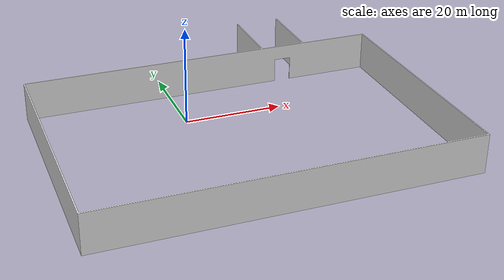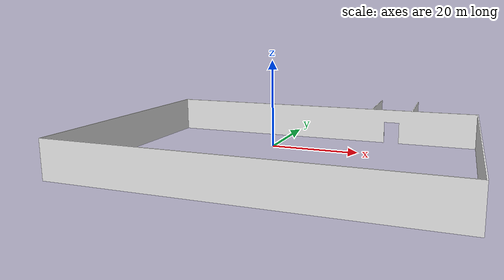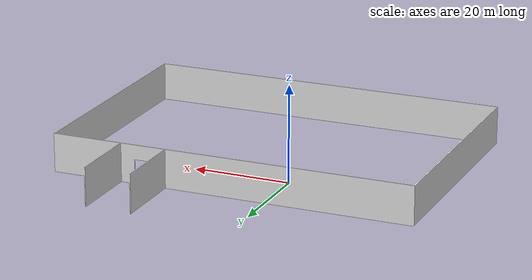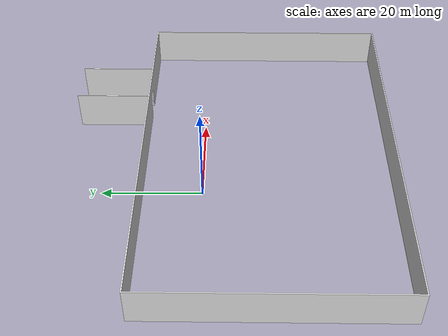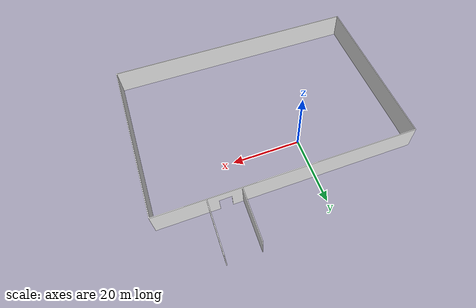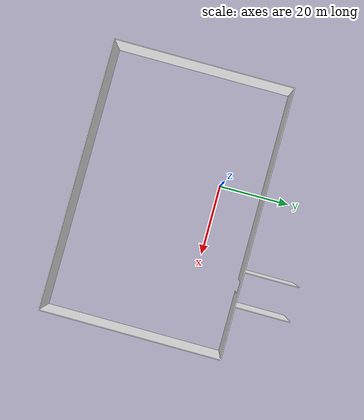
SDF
<?xml version="1.0"?>
<sdf version="1.8">
  <model name="factory">
    <plugin filename="gz-sim-label-system" name="gz::sim::systems::Label">
      <label>2</label>
    </plugin>
    <static>true</static>
    <link name="building">
      <visual name="visual">
        <geometry>
          <mesh>
            <uri>model://factory/meshes/factory_with_entrence.dae</uri>
          </mesh>
        </geometry>
      </visual>
      <collision name="collision">
        <geometry>
          <mesh>
            <uri>model://factory/meshes/factory_with_entrence.dae</uri>
          </mesh>
        </geometry>
      </collision>

    </link>
    <plugin name="gz::sim::systems::Label" filename="gz-sim-label-system">
      <label>2</label>
    </plugin>
  </model>
</sdf>
